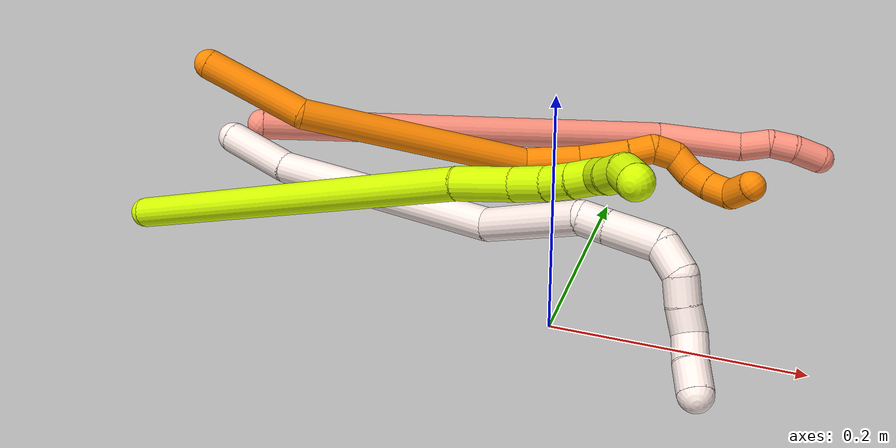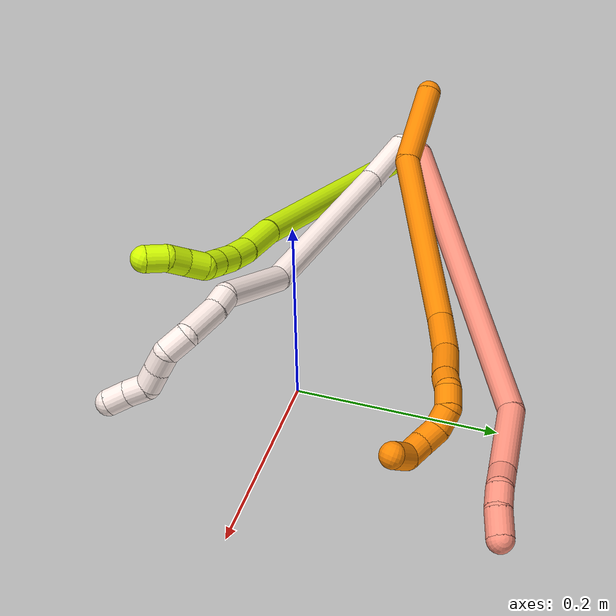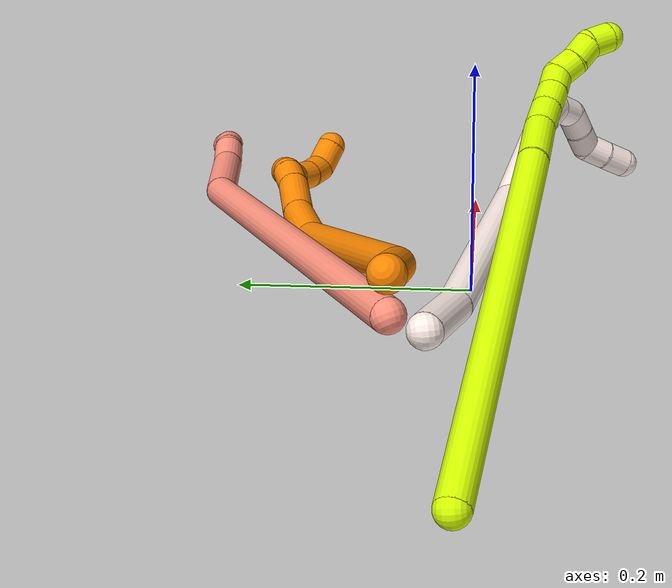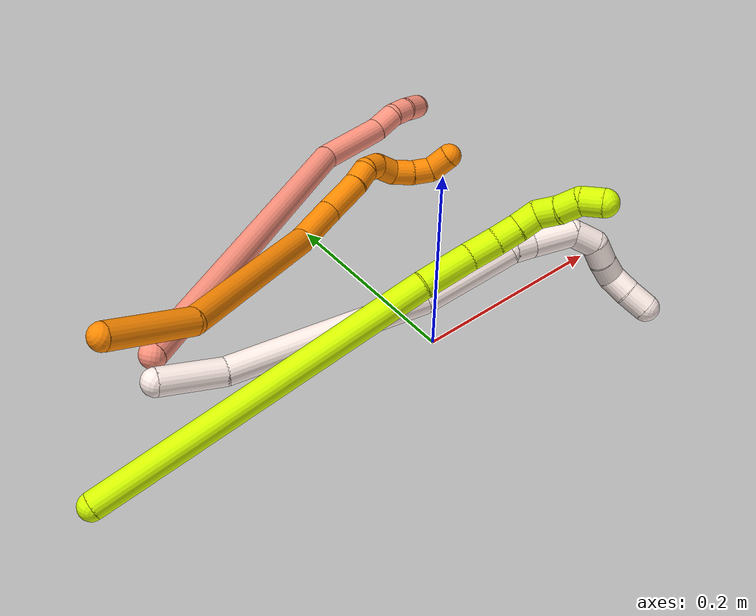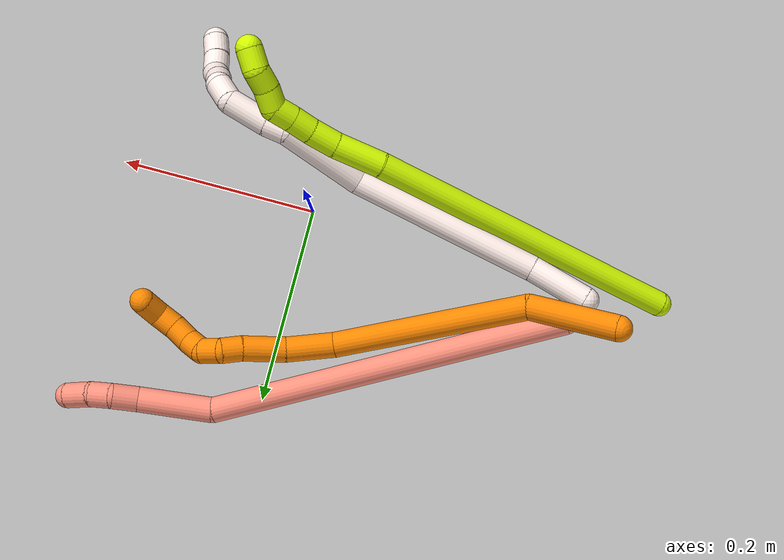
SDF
<sdf version="1.7">
 <world name="default">
  <model name="11">
   <static>0</static>
   <link name="11">
    <collision name="collision-cylinder-e_1_1_4">
     <pose>0.019454 -0.016528 0.014815 0.840002 0.71967 0.332906</pose>
     <geometry><cylinder><radius>0.0125</radius><length>0.05903</length></cylinder></geometry>
     <surface>
      <friction><ode><mu>1.16</mu><mu2>1.16</mu2><slip1>0</slip1><slip2>0</slip2></ode></friction>
      <contact><ode><kp>1e+06</kp><kd>1</kd><max_vel>0</max_vel><min_depth>0.001</min_depth></ode></contact>
     </surface>
    </collision>
    <visual name="visual-cylinder-e_1_1_4">
     <pose>0.019454 -0.016528 0.014815 0.840002 0.71967 0.332906</pose>
     <geometry><cylinder><radius>0.0125</radius><length>0.05903</length></cylinder></geometry>
     <material><ambient>1 0.933333 0.909804 1</ambient></material>
    </visual>
    <collision name="collision-cylinder-e_2_4_5">
     <pose>0.113445 -0.071843 0.070905 0.75432 0.920992 0.388063</pose>
     <geometry><cylinder><radius>0.0125</radius><length>0.187229</length></cylinder></geometry>
     <surface>
      <friction><ode><mu>1.16</mu><mu2>1.16</mu2><slip1>0</slip1><slip2>0</slip2></ode></friction>
      <contact><ode><kp>1e+06</kp><kd>1</kd><max_vel>0</max_vel><min_depth>0.001</min_depth></ode></contact>
     </surface>
    </collision>
    <visual name="visual-cylinder-e_2_4_5">
     <pose>0.113445 -0.071843 0.070905 0.75432 0.920992 0.388063</pose>
     <geometry><cylinder><radius>0.0125</radius><length>0.187229</length></cylinder></geometry>
     <material><ambient>1 0.933333 0.909804 1</ambient></material>
    </visual>
    <collision name="collision-cylinder-e_3_5_6">
     <pose>0.225199 -0.111882 0.133651 0.058273 1.04681 0.033635</pose>
     <geometry><cylinder><radius>0.0125</radius><length>0.08597</length></cylinder></geometry>
     <surface>
      <friction><ode><mu>1.16</mu><mu2>1.16</mu2><slip1>0</slip1><slip2>0</slip2></ode></friction>
      <contact><ode><kp>1e+06</kp><kd>1</kd><max_vel>0</max_vel><min_depth>0.001</min_depth></ode></contact>
     </surface>
    </collision>
    <visual name="visual-cylinder-e_3_5_6">
     <pose>0.225199 -0.111882 0.133651 0.058273 1.04681 0.033635</pose>
     <geometry><cylinder><radius>0.0125</radius><length>0.08597</length></cylinder></geometry>
     <material><ambient>1 0.933333 0.909804 1</ambient></material>
    </visual>
    <collision name="collision-cylinder-e_4_6_7">
     <pose>0.270124 -0.118477 0.15915 0.924699 0.855894 0.447061</pose>
     <geometry><cylinder><radius>0.0125</radius><length>0.020413</length></cylinder></geometry>
     <surface>
      <friction><ode><mu>1.16</mu><mu2>1.16</mu2><slip1>0</slip1><slip2>0</slip2></ode></friction>
      <contact><ode><kp>1e+06</kp><kd>1</kd><max_vel>0</max_vel><min_depth>0.001</min_depth></ode></contact>
     </surface>
    </collision>
    <visual name="visual-cylinder-e_4_6_7">
     <pose>0.270124 -0.118477 0.15915 0.924699 0.855894 0.447061</pose>
     <geometry><cylinder><radius>0.0125</radius><length>0.020413</length></cylinder></geometry>
     <material><ambient>1 0.933333 0.909804 1</ambient></material>
    </visual>
    <collision name="collision-cylinder-e_5_7_8">
     <pose>0.29342 -0.13234 0.173745 0.678676 0.854327 0.318635</pose>
     <geometry><cylinder><radius>0.0125</radius><length>0.04134</length></cylinder></geometry>
     <surface>
      <friction><ode><mu>1.16</mu><mu2>1.16</mu2><slip1>0</slip1><slip2>0</slip2></ode></friction>
      <contact><ode><kp>1e+06</kp><kd>1</kd><max_vel>0</max_vel><min_depth>0.001</min_depth></ode></contact>
     </surface>
    </collision>
    <visual name="visual-cylinder-e_5_7_8">
     <pose>0.29342 -0.13234 0.173745 0.678676 0.854327 0.318635</pose>
     <geometry><cylinder><radius>0.0125</radius><length>0.04134</length></cylinder></geometry>
     <material><ambient>1 0.933333 0.909804 1</ambient></material>
    </visual>
    <collision name="collision-cylinder-e_6_8_9">
     <pose>0.31139 -0.148768 0.193068 0.734438 0.199273 0.076871</pose>
     <geometry><cylinder><radius>0.0125</radius><length>0.024071</length></cylinder></geometry>
     <surface>
      <friction><ode><mu>1.16</mu><mu2>1.16</mu2><slip1>0</slip1><slip2>0</slip2></ode></friction>
      <contact><ode><kp>1e+06</kp><kd>1</kd><max_vel>0</max_vel><min_depth>0.001</min_depth></ode></contact>
     </surface>
    </collision>
    <visual name="visual-cylinder-e_6_8_9">
     <pose>0.31139 -0.148768 0.193068 0.734438 0.199273 0.076871</pose>
     <geometry><cylinder><radius>0.0125</radius><length>0.024071</length></cylinder></geometry>
     <material><ambient>1 0.933333 0.909804 1</ambient></material>
    </visual>
    <collision name="collision-cylinder-e_7_9_10">
     <pose>0.310714 -0.165236 0.206068 1.11056 -0.309847 -0.193178</pose>
     <geometry><cylinder><radius>0.0125</radius><length>0.020067</length></cylinder></geometry>
     <surface>
      <friction><ode><mu>1.16</mu><mu2>1.16</mu2><slip1>0</slip1><slip2>0</slip2></ode></friction>
      <contact><ode><kp>1e+06</kp><kd>1</kd><max_vel>0</max_vel><min_depth>0.001</min_depth></ode></contact>
     </surface>
    </collision>
    <visual name="visual-cylinder-e_7_9_10">
     <pose>0.310714 -0.165236 0.206068 1.11056 -0.309847 -0.193178</pose>
     <geometry><cylinder><radius>0.0125</radius><length>0.020067</length></cylinder></geometry>
     <material><ambient>1 0.933333 0.909804 1</ambient></material>
    </visual>
    <collision name="collision-cylinder-e_8_10_11">
     <pose>0.305708 -0.182647 0.214554 1.12384 -0.19579 -0.123513</pose>
     <geometry><cylinder><radius>0.0125</radius><length>0.02001</length></cylinder></geometry>
     <surface>
      <friction><ode><mu>1.16</mu><mu2>1.16</mu2><slip1>0</slip1><slip2>0</slip2></ode></friction>
      <contact><ode><kp>1e+06</kp><kd>1</kd><max_vel>0</max_vel><min_depth>0.001</min_depth></ode></contact>
     </surface>
    </collision>
    <visual name="visual-cylinder-e_8_10_11">
     <pose>0.305708 -0.182647 0.214554 1.12384 -0.19579 -0.123513</pose>
     <geometry><cylinder><radius>0.0125</radius><length>0.02001</length></cylinder></geometry>
     <material><ambient>1 0.933333 0.909804 1</ambient></material>
    </visual>
    <collision name="collision-cylinder-e_9_11_12">
     <pose>0.301503 -0.195918 0.22776 0.458233 -0.222277 -0.05204</pose>
     <geometry><cylinder><radius>0.0125</radius><length>0.020495</length></cylinder></geometry>
     <surface>
      <friction><ode><mu>1.16</mu><mu2>1.16</mu2><slip1>0</slip1><slip2>0</slip2></ode></friction>
      <contact><ode><kp>1e+06</kp><kd>1</kd><max_vel>0</max_vel><min_depth>0.001</min_depth></ode></contact>
     </surface>
    </collision>
    <visual name="visual-cylinder-e_9_11_12">
     <pose>0.301503 -0.195918 0.22776 0.458233 -0.222277 -0.05204</pose>
     <geometry><cylinder><radius>0.0125</radius><length>0.020495</length></cylinder></geometry>
     <material><ambient>1 0.933333 0.909804 1</ambient></material>
    </visual>
    <collision name="collision-cylinder-e_10_12_2">
     <pose>0.297905 -0.20556 0.245953 0.514747 -0.125584 -0.033096</pose>
     <geometry><cylinder><radius>0.0125</radius><length>0.021375</length></cylinder></geometry>
     <surface>
      <friction><ode><mu>1.16</mu><mu2>1.16</mu2><slip1>0</slip1><slip2>0</slip2></ode></friction>
      <contact><ode><kp>1e+06</kp><kd>1</kd><max_vel>0</max_vel><min_depth>0.001</min_depth></ode></contact>
     </surface>
    </collision>
    <visual name="visual-cylinder-e_10_12_2">
     <pose>0.297905 -0.20556 0.245953 0.514747 -0.125584 -0.033096</pose>
     <geometry><cylinder><radius>0.0125</radius><length>0.021375</length></cylinder></geometry>
     <material><ambient>1 0.933333 0.909804 1</ambient></material>
    </visual>
    <collision name="collision-sphere-2">
     <pose>0.296566 -0.21078 0.255182 0 -0 0</pose>
     <geometry><sphere><radius>0.0125</radius></sphere></geometry>
     <surface>
      <friction><ode><mu>1.16</mu><mu2>1.16</mu2><slip1>0</slip1><slip2>0</slip2></ode></friction>
      <contact><ode><kp>1e+06</kp><kd>1</kd><max_vel>0</max_vel><min_depth>0.001</min_depth></ode></contact>
     </surface>
    </collision>
    <visual name="visual-sphere-2">
     <pose>0.296566 -0.21078 0.255182 0 -0 0</pose>
     <geometry><sphere><radius>0.0125</radius></sphere></geometry>
     <material><ambient>1 0.933333 0.909804 1</ambient></material>
    </visual>
    <collision name="collision-sphere-12">
     <pose>0.299244 -0.20034 0.236724 0 -0 0</pose>
     <geometry><sphere><radius>0.0125</radius></sphere></geometry>
     <surface>
      <friction><ode><mu>1.16</mu><mu2>1.16</mu2><slip1>0</slip1><slip2>0</slip2></ode></friction>
      <contact><ode><kp>1e+06</kp><kd>1</kd><max_vel>0</max_vel><min_depth>0.001</min_depth></ode></contact>
     </surface>
    </collision>
    <visual name="visual-sphere-12">
     <pose>0.299244 -0.20034 0.236724 0 -0 0</pose>
     <geometry><sphere><radius>0.0125</radius></sphere></geometry>
     <material><ambient>1 0.933333 0.909804 1</ambient></material>
    </visual>
    <collision name="collision-sphere-11">
     <pose>0.303762 -0.191497 0.218796 0 -0 0</pose>
     <geometry><sphere><radius>0.0125</radius></sphere></geometry>
     <surface>
      <friction><ode><mu>1.16</mu><mu2>1.16</mu2><slip1>0</slip1><slip2>0</slip2></ode></friction>
      <contact><ode><kp>1e+06</kp><kd>1</kd><max_vel>0</max_vel><min_depth>0.001</min_depth></ode></contact>
     </surface>
    </collision>
    <visual name="visual-sphere-11">
     <pose>0.303762 -0.191497 0.218796 0 -0 0</pose>
     <geometry><sphere><radius>0.0125</radius></sphere></geometry>
     <material><ambient>1 0.933333 0.909804 1</ambient></material>
    </visual>
    <collision name="collision-sphere-10">
     <pose>0.307654 -0.173797 0.210312 0 -0 0</pose>
     <geometry><sphere><radius>0.0125</radius></sphere></geometry>
     <surface>
      <friction><ode><mu>1.16</mu><mu2>1.16</mu2><slip1>0</slip1><slip2>0</slip2></ode></friction>
      <contact><ode><kp>1e+06</kp><kd>1</kd><max_vel>0</max_vel><min_depth>0.001</min_depth></ode></contact>
     </surface>
    </collision>
    <visual name="visual-sphere-10">
     <pose>0.307654 -0.173797 0.210312 0 -0 0</pose>
     <geometry><sphere><radius>0.0125</radius></sphere></geometry>
     <material><ambient>1 0.933333 0.909804 1</ambient></material>
    </visual>
    <collision name="collision-sphere-9">
     <pose>0.313773 -0.156675 0.201824 0 -0 0</pose>
     <geometry><sphere><radius>0.0125</radius></sphere></geometry>
     <surface>
      <friction><ode><mu>1.16</mu><mu2>1.16</mu2><slip1>0</slip1><slip2>0</slip2></ode></friction>
      <contact><ode><kp>1e+06</kp><kd>1</kd><max_vel>0</max_vel><min_depth>0.001</min_depth></ode></contact>
     </surface>
    </collision>
    <visual name="visual-sphere-9">
     <pose>0.313773 -0.156675 0.201824 0 -0 0</pose>
     <geometry><sphere><radius>0.0125</radius></sphere></geometry>
     <material><ambient>1 0.933333 0.909804 1</ambient></material>
    </visual>
    <collision name="collision-sphere-4">
     <pose>0.038909 -0.033056 0.02963 0 -0 0</pose>
     <geometry><sphere><radius>0.0125</radius></sphere></geometry>
     <surface>
      <friction><ode><mu>1.16</mu><mu2>1.16</mu2><slip1>0</slip1><slip2>0</slip2></ode></friction>
      <contact><ode><kp>1e+06</kp><kd>1</kd><max_vel>0</max_vel><min_depth>0.001</min_depth></ode></contact>
     </surface>
    </collision>
    <visual name="visual-sphere-4">
     <pose>0.038909 -0.033056 0.02963 0 -0 0</pose>
     <geometry><sphere><radius>0.0125</radius></sphere></geometry>
     <material><ambient>1 0.933333 0.909804 1</ambient></material>
    </visual>
    <collision name="collision-sphere-1">
     <geometry><sphere><radius>0.0125</radius></sphere></geometry>
     <surface>
      <friction><ode><mu>1.16</mu><mu2>1.16</mu2><slip1>0</slip1><slip2>0</slip2></ode></friction>
      <contact><ode><kp>1e+06</kp><kd>1</kd><max_vel>0</max_vel><min_depth>0.001</min_depth></ode></contact>
     </surface>
    </collision>
    <visual name="visual-sphere-1">
     <geometry><sphere><radius>0.0125</radius></sphere></geometry>
     <material><ambient>1 0.933333 0.909804 1</ambient></material>
    </visual>
    <collision name="collision-sphere-8">
     <pose>0.309008 -0.140862 0.184312 0 -0 0</pose>
     <geometry><sphere><radius>0.0125</radius></sphere></geometry>
     <surface>
      <friction><ode><mu>1.16</mu><mu2>1.16</mu2><slip1>0</slip1><slip2>0</slip2></ode></friction>
      <contact><ode><kp>1e+06</kp><kd>1</kd><max_vel>0</max_vel><min_depth>0.001</min_depth></ode></contact>
     </surface>
    </collision>
    <visual name="visual-sphere-8">
     <pose>0.309008 -0.140862 0.184312 0 -0 0</pose>
     <geometry><sphere><radius>0.0125</radius></sphere></geometry>
     <material><ambient>1 0.933333 0.909804 1</ambient></material>
    </visual>
    <collision name="collision-sphere-5">
     <pose>0.187981 -0.110629 0.112181 0 -0 0</pose>
     <geometry><sphere><radius>0.0125</radius></sphere></geometry>
     <surface>
      <friction><ode><mu>1.16</mu><mu2>1.16</mu2><slip1>0</slip1><slip2>0</slip2></ode></friction>
      <contact><ode><kp>1e+06</kp><kd>1</kd><max_vel>0</max_vel><min_depth>0.001</min_depth></ode></contact>
     </surface>
    </collision>
    <visual name="visual-sphere-5">
     <pose>0.187981 -0.110629 0.112181 0 -0 0</pose>
     <geometry><sphere><radius>0.0125</radius></sphere></geometry>
     <material><ambient>1 0.933333 0.909804 1</ambient></material>
    </visual>
    <collision name="collision-sphere-6">
     <pose>0.262417 -0.113134 0.155122 0 -0 0</pose>
     <geometry><sphere><radius>0.0125</radius></sphere></geometry>
     <surface>
      <friction><ode><mu>1.16</mu><mu2>1.16</mu2><slip1>0</slip1><slip2>0</slip2></ode></friction>
      <contact><ode><kp>1e+06</kp><kd>1</kd><max_vel>0</max_vel><min_depth>0.001</min_depth></ode></contact>
     </surface>
    </collision>
    <visual name="visual-sphere-6">
     <pose>0.262417 -0.113134 0.155122 0 -0 0</pose>
     <geometry><sphere><radius>0.0125</radius></sphere></geometry>
     <material><ambient>1 0.933333 0.909804 1</ambient></material>
    </visual>
    <collision name="collision-sphere-7">
     <pose>0.277832 -0.123819 0.163179 0 -0 0</pose>
     <geometry><sphere><radius>0.0125</radius></sphere></geometry>
     <surface>
      <friction><ode><mu>1.16</mu><mu2>1.16</mu2><slip1>0</slip1><slip2>0</slip2></ode></friction>
      <contact><ode><kp>1e+06</kp><kd>1</kd><max_vel>0</max_vel><min_depth>0.001</min_depth></ode></contact>
     </surface>
    </collision>
    <visual name="visual-sphere-7">
     <pose>0.277832 -0.123819 0.163179 0 -0 0</pose>
     <geometry><sphere><radius>0.0125</radius></sphere></geometry>
     <material><ambient>1 0.933333 0.909804 1</ambient></material>
    </visual>
    <inertial>
     <pose>0.183575 -0.101791 0.118145 0 -0 0</pose>
     <mass>0.5</mass>
     <inertia>
      <ixx>0.000523</ixx>
      <ixy>0</ixy>
      <ixz>0</ixz>
      <iyy>0.000691</iyy>
      <iyz>0</iyz>
      <izz>-0.000237</izz>
     </inertia>
    </inertial>
   </link>
   <pose>-0.279819 0.024092 0.11165 1.53713 -0.478666 0.266786</pose>
  </model>
  <model name="15">
   <static>0</static>
   <link name="15">
    <collision name="collision-cylinder-e_1_1_4">
     <pose>0.152605 -0.053194 -0.013685 1.82259 1.22531 1.47288</pose>
     <geometry><cylinder><radius>0.0125</radius><length>0.324378</length></cylinder></geometry>
     <surface>
      <friction><ode><mu>1.16</mu><mu2>1.16</mu2><slip1>0</slip1><slip2>0</slip2></ode></friction>
      <contact><ode><kp>1e+06</kp><kd>1</kd><max_vel>0</max_vel><min_depth>0.001</min_depth></ode></contact>
     </surface>
    </collision>
    <visual name="visual-cylinder-e_1_1_4">
     <pose>0.152605 -0.053194 -0.013685 1.82259 1.22531 1.47288</pose>
     <geometry><cylinder><radius>0.0125</radius><length>0.324378</length></cylinder></geometry>
     <material><ambient>0.835294 1 0 1</ambient></material>
    </visual>
    <collision name="collision-cylinder-e_2_4_5">
     <pose>0.328117 -0.111684 -0.028082 1.70462 1.34163 1.47397</pose>
     <geometry><cylinder><radius>0.0125</radius><length>0.047043</length></cylinder></geometry>
     <surface>
      <friction><ode><mu>1.16</mu><mu2>1.16</mu2><slip1>0</slip1><slip2>0</slip2></ode></friction>
      <contact><ode><kp>1e+06</kp><kd>1</kd><max_vel>0</max_vel><min_depth>0.001</min_depth></ode></contact>
     </surface>
    </collision>
    <visual name="visual-cylinder-e_2_4_5">
     <pose>0.328117 -0.111684 -0.028082 1.70462 1.34163 1.47397</pose>
     <geometry><cylinder><radius>0.0125</radius><length>0.047043</length></cylinder></geometry>
     <material><ambient>0.835294 1 0 1</ambient></material>
    </visual>
    <collision name="collision-cylinder-e_3_5_6">
     <pose>0.363774 -0.1208 -0.030602 2.0125 1.25071 1.70153</pose>
     <geometry><cylinder><radius>0.0125</radius><length>0.026866</length></cylinder></geometry>
     <surface>
      <friction><ode><mu>1.16</mu><mu2>1.16</mu2><slip1>0</slip1><slip2>0</slip2></ode></friction>
      <contact><ode><kp>1e+06</kp><kd>1</kd><max_vel>0</max_vel><min_depth>0.001</min_depth></ode></contact>
     </surface>
    </collision>
    <visual name="visual-cylinder-e_3_5_6">
     <pose>0.363774 -0.1208 -0.030602 2.0125 1.25071 1.70153</pose>
     <geometry><cylinder><radius>0.0125</radius><length>0.026866</length></cylinder></geometry>
     <material><ambient>0.835294 1 0 1</ambient></material>
    </visual>
    <collision name="collision-cylinder-e_4_6_7">
     <pose>0.3863 -0.128674 -0.034537 2.05437 1.13285 1.62172</pose>
     <geometry><cylinder><radius>0.0125</radius><length>0.021588</length></cylinder></geometry>
     <surface>
      <friction><ode><mu>1.16</mu><mu2>1.16</mu2><slip1>0</slip1><slip2>0</slip2></ode></friction>
      <contact><ode><kp>1e+06</kp><kd>1</kd><max_vel>0</max_vel><min_depth>0.001</min_depth></ode></contact>
     </surface>
    </collision>
    <visual name="visual-cylinder-e_4_6_7">
     <pose>0.3863 -0.128674 -0.034537 2.05437 1.13285 1.62172</pose>
     <geometry><cylinder><radius>0.0125</radius><length>0.021588</length></cylinder></geometry>
     <material><ambient>0.835294 1 0 1</ambient></material>
    </visual>
    <collision name="collision-cylinder-e_5_7_8">
     <pose>0.405082 -0.136835 -0.038117 1.91053 1.12016 1.45084</pose>
     <geometry><cylinder><radius>0.0125</radius><length>0.02001</length></cylinder></geometry>
     <surface>
      <friction><ode><mu>1.16</mu><mu2>1.16</mu2><slip1>0</slip1><slip2>0</slip2></ode></friction>
      <contact><ode><kp>1e+06</kp><kd>1</kd><max_vel>0</max_vel><min_depth>0.001</min_depth></ode></contact>
     </surface>
    </collision>
    <visual name="visual-cylinder-e_5_7_8">
     <pose>0.405082 -0.136835 -0.038117 1.91053 1.12016 1.45084</pose>
     <geometry><cylinder><radius>0.0125</radius><length>0.02001</length></cylinder></geometry>
     <material><ambient>0.835294 1 0 1</ambient></material>
    </visual>
    <collision name="collision-cylinder-e_6_8_9">
     <pose>0.419961 -0.144479 -0.046857 2.68996 0.627342 1.90914</pose>
     <geometry><cylinder><radius>0.0125</radius><length>0.02001</length></cylinder></geometry>
     <surface>
      <friction><ode><mu>1.16</mu><mu2>1.16</mu2><slip1>0</slip1><slip2>0</slip2></ode></friction>
      <contact><ode><kp>1e+06</kp><kd>1</kd><max_vel>0</max_vel><min_depth>0.001</min_depth></ode></contact>
     </surface>
    </collision>
    <visual name="visual-cylinder-e_6_8_9">
     <pose>0.419961 -0.144479 -0.046857 2.68996 0.627342 1.90914</pose>
     <geometry><cylinder><radius>0.0125</radius><length>0.02001</length></cylinder></geometry>
     <material><ambient>0.835294 1 0 1</ambient></material>
    </visual>
    <collision name="collision-cylinder-e_7_9_10">
     <pose>0.432499 -0.152742 -0.05993 2.45636 0.728452 1.63731</pose>
     <geometry><cylinder><radius>0.0125</radius><length>0.020025</length></cylinder></geometry>
     <surface>
      <friction><ode><mu>1.16</mu><mu2>1.16</mu2><slip1>0</slip1><slip2>0</slip2></ode></friction>
      <contact><ode><kp>1e+06</kp><kd>1</kd><max_vel>0</max_vel><min_depth>0.001</min_depth></ode></contact>
     </surface>
    </collision>
    <visual name="visual-cylinder-e_7_9_10">
     <pose>0.432499 -0.152742 -0.05993 2.45636 0.728452 1.63731</pose>
     <geometry><cylinder><radius>0.0125</radius><length>0.020025</length></cylinder></geometry>
     <material><ambient>0.835294 1 0 1</ambient></material>
    </visual>
    <collision name="collision-cylinder-e_8_10_2">
     <pose>0.44551 -0.157834 -0.073487 3.09483 0.684168 3.01044</pose>
     <geometry><cylinder><radius>0.0125</radius><length>0.02008</length></cylinder></geometry>
     <surface>
      <friction><ode><mu>1.16</mu><mu2>1.16</mu2><slip1>0</slip1><slip2>0</slip2></ode></friction>
      <contact><ode><kp>1e+06</kp><kd>1</kd><max_vel>0</max_vel><min_depth>0.001</min_depth></ode></contact>
     </surface>
    </collision>
    <visual name="visual-cylinder-e_8_10_2">
     <pose>0.44551 -0.157834 -0.073487 3.09483 0.684168 3.01044</pose>
     <geometry><cylinder><radius>0.0125</radius><length>0.02008</length></cylinder></geometry>
     <material><ambient>0.835294 1 0 1</ambient></material>
    </visual>
    <collision name="collision-sphere-2">
     <pose>0.451856 -0.158198 -0.081259 0 -0 0</pose>
     <geometry><sphere><radius>0.0125</radius></sphere></geometry>
     <surface>
      <friction><ode><mu>1.16</mu><mu2>1.16</mu2><slip1>0</slip1><slip2>0</slip2></ode></friction>
      <contact><ode><kp>1e+06</kp><kd>1</kd><max_vel>0</max_vel><min_depth>0.001</min_depth></ode></contact>
     </surface>
    </collision>
    <visual name="visual-sphere-2">
     <pose>0.451856 -0.158198 -0.081259 0 -0 0</pose>
     <geometry><sphere><radius>0.0125</radius></sphere></geometry>
     <material><ambient>0.835294 1 0 1</ambient></material>
    </visual>
    <collision name="collision-sphere-10">
     <pose>0.439165 -0.15747 -0.065715 0 -0 0</pose>
     <geometry><sphere><radius>0.0125</radius></sphere></geometry>
     <surface>
      <friction><ode><mu>1.16</mu><mu2>1.16</mu2><slip1>0</slip1><slip2>0</slip2></ode></friction>
      <contact><ode><kp>1e+06</kp><kd>1</kd><max_vel>0</max_vel><min_depth>0.001</min_depth></ode></contact>
     </surface>
    </collision>
    <visual name="visual-sphere-10">
     <pose>0.439165 -0.15747 -0.065715 0 -0 0</pose>
     <geometry><sphere><radius>0.0125</radius></sphere></geometry>
     <material><ambient>0.835294 1 0 1</ambient></material>
    </visual>
    <collision name="collision-sphere-9">
     <pose>0.425834 -0.148014 -0.054145 0 -0 0</pose>
     <geometry><sphere><radius>0.0125</radius></sphere></geometry>
     <surface>
      <friction><ode><mu>1.16</mu><mu2>1.16</mu2><slip1>0</slip1><slip2>0</slip2></ode></friction>
      <contact><ode><kp>1e+06</kp><kd>1</kd><max_vel>0</max_vel><min_depth>0.001</min_depth></ode></contact>
     </surface>
    </collision>
    <visual name="visual-sphere-9">
     <pose>0.425834 -0.148014 -0.054145 0 -0 0</pose>
     <geometry><sphere><radius>0.0125</radius></sphere></geometry>
     <material><ambient>0.835294 1 0 1</ambient></material>
    </visual>
    <collision name="collision-sphere-4">
     <pose>0.30521 -0.106388 -0.027369 0 -0 0</pose>
     <geometry><sphere><radius>0.0125</radius></sphere></geometry>
     <surface>
      <friction><ode><mu>1.16</mu><mu2>1.16</mu2><slip1>0</slip1><slip2>0</slip2></ode></friction>
      <contact><ode><kp>1e+06</kp><kd>1</kd><max_vel>0</max_vel><min_depth>0.001</min_depth></ode></contact>
     </surface>
    </collision>
    <visual name="visual-sphere-4">
     <pose>0.30521 -0.106388 -0.027369 0 -0 0</pose>
     <geometry><sphere><radius>0.0125</radius></sphere></geometry>
     <material><ambient>0.835294 1 0 1</ambient></material>
    </visual>
    <collision name="collision-sphere-1">
     <geometry><sphere><radius>0.0125</radius></sphere></geometry>
     <surface>
      <friction><ode><mu>1.16</mu><mu2>1.16</mu2><slip1>0</slip1><slip2>0</slip2></ode></friction>
      <contact><ode><kp>1e+06</kp><kd>1</kd><max_vel>0</max_vel><min_depth>0.001</min_depth></ode></contact>
     </surface>
    </collision>
    <visual name="visual-sphere-1">
     <geometry><sphere><radius>0.0125</radius></sphere></geometry>
     <material><ambient>0.835294 1 0 1</ambient></material>
    </visual>
    <collision name="collision-sphere-8">
     <pose>0.414088 -0.140943 -0.039569 0 -0 0</pose>
     <geometry><sphere><radius>0.0125</radius></sphere></geometry>
     <surface>
      <friction><ode><mu>1.16</mu><mu2>1.16</mu2><slip1>0</slip1><slip2>0</slip2></ode></friction>
      <contact><ode><kp>1e+06</kp><kd>1</kd><max_vel>0</max_vel><min_depth>0.001</min_depth></ode></contact>
     </surface>
    </collision>
    <visual name="visual-sphere-8">
     <pose>0.414088 -0.140943 -0.039569 0 -0 0</pose>
     <geometry><sphere><radius>0.0125</radius></sphere></geometry>
     <material><ambient>0.835294 1 0 1</ambient></material>
    </visual>
    <collision name="collision-sphere-5">
     <pose>0.351024 -0.116979 -0.028795 0 -0 0</pose>
     <geometry><sphere><radius>0.0125</radius></sphere></geometry>
     <surface>
      <friction><ode><mu>1.16</mu><mu2>1.16</mu2><slip1>0</slip1><slip2>0</slip2></ode></friction>
      <contact><ode><kp>1e+06</kp><kd>1</kd><max_vel>0</max_vel><min_depth>0.001</min_depth></ode></contact>
     </surface>
    </collision>
    <visual name="visual-sphere-5">
     <pose>0.351024 -0.116979 -0.028795 0 -0 0</pose>
     <geometry><sphere><radius>0.0125</radius></sphere></geometry>
     <material><ambient>0.835294 1 0 1</ambient></material>
    </visual>
    <collision name="collision-sphere-6">
     <pose>0.376525 -0.124621 -0.032409 0 -0 0</pose>
     <geometry><sphere><radius>0.0125</radius></sphere></geometry>
     <surface>
      <friction><ode><mu>1.16</mu><mu2>1.16</mu2><slip1>0</slip1><slip2>0</slip2></ode></friction>
      <contact><ode><kp>1e+06</kp><kd>1</kd><max_vel>0</max_vel><min_depth>0.001</min_depth></ode></contact>
     </surface>
    </collision>
    <visual name="visual-sphere-6">
     <pose>0.376525 -0.124621 -0.032409 0 -0 0</pose>
     <geometry><sphere><radius>0.0125</radius></sphere></geometry>
     <material><ambient>0.835294 1 0 1</ambient></material>
    </visual>
    <collision name="collision-sphere-7">
     <pose>0.396075 -0.132726 -0.036665 0 -0 0</pose>
     <geometry><sphere><radius>0.0125</radius></sphere></geometry>
     <surface>
      <friction><ode><mu>1.16</mu><mu2>1.16</mu2><slip1>0</slip1><slip2>0</slip2></ode></friction>
      <contact><ode><kp>1e+06</kp><kd>1</kd><max_vel>0</max_vel><min_depth>0.001</min_depth></ode></contact>
     </surface>
    </collision>
    <visual name="visual-sphere-7">
     <pose>0.396075 -0.132726 -0.036665 0 -0 0</pose>
     <geometry><sphere><radius>0.0125</radius></sphere></geometry>
     <material><ambient>0.835294 1 0 1</ambient></material>
    </visual>
    <inertial>
     <pose>0.234332 -0.080778 -0.023408 0 -0 0</pose>
     <mass>0.5</mass>
     <inertia>
      <ixx>0.001098</ixx>
      <ixy>0</ixy>
      <ixz>0</ixz>
      <iyy>0.003497</iyy>
      <iyz>0</iyz>
      <izz>-0.00177</izz>
     </inertia>
    </inertial>
   </link>
   <pose>-0.361722 0.003466 0.036533 -1.7376 0.009904 -0.133445</pose>
  </model>
  <model name="16">
   <static>0</static>
   <link name="16">
    <collision name="collision-cylinder-e_1_1_4">
     <pose>0.123625 0.082476 0.094518 -0.717466 0.7781 -0.305036</pose>
     <geometry><cylinder><radius>0.0125</radius><length>0.352244</length></cylinder></geometry>
     <surface>
      <friction><ode><mu>1.16</mu><mu2>1.16</mu2><slip1>0</slip1><slip2>0</slip2></ode></friction>
      <contact><ode><kp>1e+06</kp><kd>1</kd><max_vel>0</max_vel><min_depth>0.001</min_depth></ode></contact>
     </surface>
    </collision>
    <visual name="visual-cylinder-e_1_1_4">
     <pose>0.123625 0.082476 0.094518 -0.717466 0.7781 -0.305036</pose>
     <geometry><cylinder><radius>0.0125</radius><length>0.352244</length></cylinder></geometry>
     <material><ambient>1 0.576471 0.494118 1</ambient></material>
    </visual>
    <collision name="collision-cylinder-e_2_4_5">
     <pose>0.278528 0.16871 0.208534 -0.190427 1.00514 -0.104888</pose>
     <geometry><cylinder><radius>0.0125</radius><length>0.074099</length></cylinder></geometry>
     <surface>
      <friction><ode><mu>1.16</mu><mu2>1.16</mu2><slip1>0</slip1><slip2>0</slip2></ode></friction>
      <contact><ode><kp>1e+06</kp><kd>1</kd><max_vel>0</max_vel><min_depth>0.001</min_depth></ode></contact>
     </surface>
    </collision>
    <visual name="visual-cylinder-e_2_4_5">
     <pose>0.278528 0.16871 0.208534 -0.190427 1.00514 -0.104888</pose>
     <geometry><cylinder><radius>0.0125</radius><length>0.074099</length></cylinder></geometry>
     <material><ambient>1 0.576471 0.494118 1</ambient></material>
    </visual>
    <collision name="collision-cylinder-e_3_5_6">
     <pose>0.318755 0.172324 0.237378 0.015465 0.763633 0.00621</pose>
     <geometry><cylinder><radius>0.0125</radius><length>0.025878</length></cylinder></geometry>
     <surface>
      <friction><ode><mu>1.16</mu><mu2>1.16</mu2><slip1>0</slip1><slip2>0</slip2></ode></friction>
      <contact><ode><kp>1e+06</kp><kd>1</kd><max_vel>0</max_vel><min_depth>0.001</min_depth></ode></contact>
     </surface>
    </collision>
    <visual name="visual-cylinder-e_3_5_6">
     <pose>0.318755 0.172324 0.237378 0.015465 0.763633 0.00621</pose>
     <geometry><cylinder><radius>0.0125</radius><length>0.025878</length></cylinder></geometry>
     <material><ambient>1 0.576471 0.494118 1</ambient></material>
    </visual>
    <collision name="collision-cylinder-e_4_6_7">
     <pose>0.336982 0.174445 0.25127 -0.462179 1.0699 -0.277076</pose>
     <geometry><cylinder><radius>0.0125</radius><length>0.021157</length></cylinder></geometry>
     <surface>
      <friction><ode><mu>1.16</mu><mu2>1.16</mu2><slip1>0</slip1><slip2>0</slip2></ode></friction>
      <contact><ode><kp>1e+06</kp><kd>1</kd><max_vel>0</max_vel><min_depth>0.001</min_depth></ode></contact>
     </surface>
    </collision>
    <visual name="visual-cylinder-e_4_6_7">
     <pose>0.336982 0.174445 0.25127 -0.462179 1.0699 -0.277076</pose>
     <geometry><cylinder><radius>0.0125</radius><length>0.021157</length></cylinder></geometry>
     <material><ambient>1 0.576471 0.494118 1</ambient></material>
    </visual>
    <collision name="collision-cylinder-e_5_7_2">
     <pose>0.357854 0.182185 0.259393 -0.99223 1.05723 -0.612379</pose>
     <geometry><cylinder><radius>0.0125</radius><length>0.026622</length></cylinder></geometry>
     <surface>
      <friction><ode><mu>1.16</mu><mu2>1.16</mu2><slip1>0</slip1><slip2>0</slip2></ode></friction>
      <contact><ode><kp>1e+06</kp><kd>1</kd><max_vel>0</max_vel><min_depth>0.001</min_depth></ode></contact>
     </surface>
    </collision>
    <visual name="visual-cylinder-e_5_7_2">
     <pose>0.357854 0.182185 0.259393 -0.99223 1.05723 -0.612379</pose>
     <geometry><cylinder><radius>0.0125</radius><length>0.026622</length></cylinder></geometry>
     <material><ambient>1 0.576471 0.494118 1</ambient></material>
    </visual>
    <collision name="collision-sphere-2">
     <pose>0.369448 0.18766 0.262969 0 -0 0</pose>
     <geometry><sphere><radius>0.0125</radius></sphere></geometry>
     <surface>
      <friction><ode><mu>1.16</mu><mu2>1.16</mu2><slip1>0</slip1><slip2>0</slip2></ode></friction>
      <contact><ode><kp>1e+06</kp><kd>1</kd><max_vel>0</max_vel><min_depth>0.001</min_depth></ode></contact>
     </surface>
    </collision>
    <visual name="visual-sphere-2">
     <pose>0.369448 0.18766 0.262969 0 -0 0</pose>
     <geometry><sphere><radius>0.0125</radius></sphere></geometry>
     <material><ambient>1 0.576471 0.494118 1</ambient></material>
    </visual>
    <collision name="collision-sphere-7">
     <pose>0.346261 0.17671 0.255817 0 -0 0</pose>
     <geometry><sphere><radius>0.0125</radius></sphere></geometry>
     <surface>
      <friction><ode><mu>1.16</mu><mu2>1.16</mu2><slip1>0</slip1><slip2>0</slip2></ode></friction>
      <contact><ode><kp>1e+06</kp><kd>1</kd><max_vel>0</max_vel><min_depth>0.001</min_depth></ode></contact>
     </surface>
    </collision>
    <visual name="visual-sphere-7">
     <pose>0.346261 0.17671 0.255817 0 -0 0</pose>
     <geometry><sphere><radius>0.0125</radius></sphere></geometry>
     <material><ambient>1 0.576471 0.494118 1</ambient></material>
    </visual>
    <collision name="collision-sphere-6">
     <pose>0.327703 0.172179 0.246723 0 -0 0</pose>
     <geometry><sphere><radius>0.0125</radius></sphere></geometry>
     <surface>
      <friction><ode><mu>1.16</mu><mu2>1.16</mu2><slip1>0</slip1><slip2>0</slip2></ode></friction>
      <contact><ode><kp>1e+06</kp><kd>1</kd><max_vel>0</max_vel><min_depth>0.001</min_depth></ode></contact>
     </surface>
    </collision>
    <visual name="visual-sphere-6">
     <pose>0.327703 0.172179 0.246723 0 -0 0</pose>
     <geometry><sphere><radius>0.0125</radius></sphere></geometry>
     <material><ambient>1 0.576471 0.494118 1</ambient></material>
    </visual>
    <collision name="collision-sphere-5">
     <pose>0.309806 0.172469 0.228033 0 -0 0</pose>
     <geometry><sphere><radius>0.0125</radius></sphere></geometry>
     <surface>
      <friction><ode><mu>1.16</mu><mu2>1.16</mu2><slip1>0</slip1><slip2>0</slip2></ode></friction>
      <contact><ode><kp>1e+06</kp><kd>1</kd><max_vel>0</max_vel><min_depth>0.001</min_depth></ode></contact>
     </surface>
    </collision>
    <visual name="visual-sphere-5">
     <pose>0.309806 0.172469 0.228033 0 -0 0</pose>
     <geometry><sphere><radius>0.0125</radius></sphere></geometry>
     <material><ambient>1 0.576471 0.494118 1</ambient></material>
    </visual>
    <collision name="collision-sphere-1">
     <geometry><sphere><radius>0.0125</radius></sphere></geometry>
     <surface>
      <friction><ode><mu>1.16</mu><mu2>1.16</mu2><slip1>0</slip1><slip2>0</slip2></ode></friction>
      <contact><ode><kp>1e+06</kp><kd>1</kd><max_vel>0</max_vel><min_depth>0.001</min_depth></ode></contact>
     </surface>
    </collision>
    <visual name="visual-sphere-1">
     <geometry><sphere><radius>0.0125</radius></sphere></geometry>
     <material><ambient>1 0.576471 0.494118 1</ambient></material>
    </visual>
    <collision name="collision-sphere-4">
     <pose>0.24725 0.164951 0.189036 0 -0 0</pose>
     <geometry><sphere><radius>0.0125</radius></sphere></geometry>
     <surface>
      <friction><ode><mu>1.16</mu><mu2>1.16</mu2><slip1>0</slip1><slip2>0</slip2></ode></friction>
      <contact><ode><kp>1e+06</kp><kd>1</kd><max_vel>0</max_vel><min_depth>0.001</min_depth></ode></contact>
     </surface>
    </collision>
    <visual name="visual-sphere-4">
     <pose>0.24725 0.164951 0.189036 0 -0 0</pose>
     <geometry><sphere><radius>0.0125</radius></sphere></geometry>
     <material><ambient>1 0.576471 0.494118 1</ambient></material>
    </visual>
    <inertial>
     <pose>0.17818 0.109106 0.13422 0 -0 0</pose>
     <mass>0.5</mass>
     <inertia>
      <ixx>0.001751</ixx>
      <ixy>0</ixy>
      <ixz>0</ixz>
      <iyy>0.002407</iyy>
      <iyz>0</iyz>
      <izz>-0.004299</izz>
     </inertia>
    </inertial>
   </link>
   <pose>-0.266203 0.048931 0.114605 -0.515024 0.494627 -0.237129</pose>
  </model>
  <model name="19">
   <static>0</static>
   <link name="19">
    <collision name="collision-cylinder-e_1_1_4">
     <pose>0.019941 0.003896 -0.038847 -3.04164 0.472223 -2.73165</pose>
     <geometry><cylinder><radius>0.0125</radius><length>0.087679</length></cylinder></geometry>
     <surface>
      <friction><ode><mu>1.16</mu><mu2>1.16</mu2><slip1>0</slip1><slip2>0</slip2></ode></friction>
      <contact><ode><kp>1e+06</kp><kd>1</kd><max_vel>0</max_vel><min_depth>0.001</min_depth></ode></contact>
     </surface>
    </collision>
    <visual name="visual-cylinder-e_1_1_4">
     <pose>0.019941 0.003896 -0.038847 -3.04164 0.472223 -2.73165</pose>
     <geometry><cylinder><radius>0.0125</radius><length>0.087679</length></cylinder></geometry>
     <material><ambient>0.996078 0.537255 0 1</ambient></material>
    </visual>
    <collision name="collision-cylinder-e_2_4_5">
     <pose>0.092142 0.053133 -0.146249 -2.55725 0.566346 -1.53773</pose>
     <geometry><cylinder><radius>0.0125</radius><length>0.194799</length></cylinder></geometry>
     <surface>
      <friction><ode><mu>1.16</mu><mu2>1.16</mu2><slip1>0</slip1><slip2>0</slip2></ode></friction>
      <contact><ode><kp>1e+06</kp><kd>1</kd><max_vel>0</max_vel><min_depth>0.001</min_depth></ode></contact>
     </surface>
    </collision>
    <visual name="visual-cylinder-e_2_4_5">
     <pose>0.092142 0.053133 -0.146249 -2.55725 0.566346 -1.53773</pose>
     <geometry><cylinder><radius>0.0125</radius><length>0.194799</length></cylinder></geometry>
     <material><ambient>0.996078 0.537255 0 1</ambient></material>
    </visual>
    <collision name="collision-cylinder-e_3_5_6">
     <pose>0.163356 0.106065 -0.227679 -2.60891 0.903079 -2.1167</pose>
     <geometry><cylinder><radius>0.0125</radius><length>0.048276</length></cylinder></geometry>
     <surface>
      <friction><ode><mu>1.16</mu><mu2>1.16</mu2><slip1>0</slip1><slip2>0</slip2></ode></friction>
      <contact><ode><kp>1e+06</kp><kd>1</kd><max_vel>0</max_vel><min_depth>0.001</min_depth></ode></contact>
     </surface>
    </collision>
    <visual name="visual-cylinder-e_3_5_6">
     <pose>0.163356 0.106065 -0.227679 -2.60891 0.903079 -2.1167</pose>
     <geometry><cylinder><radius>0.0125</radius><length>0.048276</length></cylinder></geometry>
     <material><ambient>0.996078 0.537255 0 1</ambient></material>
    </visual>
    <collision name="collision-cylinder-e_4_6_7">
     <pose>0.201063 0.116903 -0.250293 -2.81969 1.06992 -2.60678</pose>
     <geometry><cylinder><radius>0.0125</radius><length>0.042758</length></cylinder></geometry>
     <surface>
      <friction><ode><mu>1.16</mu><mu2>1.16</mu2><slip1>0</slip1><slip2>0</slip2></ode></friction>
      <contact><ode><kp>1e+06</kp><kd>1</kd><max_vel>0</max_vel><min_depth>0.001</min_depth></ode></contact>
     </surface>
    </collision>
    <visual name="visual-cylinder-e_4_6_7">
     <pose>0.201063 0.116903 -0.250293 -2.81969 1.06992 -2.60678</pose>
     <geometry><cylinder><radius>0.0125</radius><length>0.042758</length></cylinder></geometry>
     <material><ambient>0.996078 0.537255 0 1</ambient></material>
    </visual>
    <collision name="collision-cylinder-e_5_7_8">
     <pose>0.228932 0.122934 -0.263924 -2.52078 1.08741 -2.16584</pose>
     <geometry><cylinder><radius>0.0125</radius><length>0.020591</length></cylinder></geometry>
     <surface>
      <friction><ode><mu>1.16</mu><mu2>1.16</mu2><slip1>0</slip1><slip2>0</slip2></ode></friction>
      <contact><ode><kp>1e+06</kp><kd>1</kd><max_vel>0</max_vel><min_depth>0.001</min_depth></ode></contact>
     </surface>
    </collision>
    <visual name="visual-cylinder-e_5_7_8">
     <pose>0.228932 0.122934 -0.263924 -2.52078 1.08741 -2.16584</pose>
     <geometry><cylinder><radius>0.0125</radius><length>0.020591</length></cylinder></geometry>
     <material><ambient>0.996078 0.537255 0 1</ambient></material>
    </visual>
    <collision name="collision-cylinder-e_6_8_9">
     <pose>0.24333 0.128889 -0.275715 -2.75983 0.555404 -1.95018</pose>
     <geometry><cylinder><radius>0.0125</radius><length>0.020034</length></cylinder></geometry>
     <surface>
      <friction><ode><mu>1.16</mu><mu2>1.16</mu2><slip1>0</slip1><slip2>0</slip2></ode></friction>
      <contact><ode><kp>1e+06</kp><kd>1</kd><max_vel>0</max_vel><min_depth>0.001</min_depth></ode></contact>
     </surface>
    </collision>
    <visual name="visual-cylinder-e_6_8_9">
     <pose>0.24333 0.128889 -0.275715 -2.75983 0.555404 -1.95018</pose>
     <geometry><cylinder><radius>0.0125</radius><length>0.020034</length></cylinder></geometry>
     <material><ambient>0.996078 0.537255 0 1</ambient></material>
    </visual>
    <collision name="collision-cylinder-e_7_9_10">
     <pose>0.249987 0.130865 -0.293873 3.02565 0.132401 1.70353</pose>
     <geometry><cylinder><radius>0.0125</radius><length>0.020841</length></cylinder></geometry>
     <surface>
      <friction><ode><mu>1.16</mu><mu2>1.16</mu2><slip1>0</slip1><slip2>0</slip2></ode></friction>
      <contact><ode><kp>1e+06</kp><kd>1</kd><max_vel>0</max_vel><min_depth>0.001</min_depth></ode></contact>
     </surface>
    </collision>
    <visual name="visual-cylinder-e_7_9_10">
     <pose>0.249987 0.130865 -0.293873 3.02565 0.132401 1.70353</pose>
     <geometry><cylinder><radius>0.0125</radius><length>0.020841</length></cylinder></geometry>
     <material><ambient>0.996078 0.537255 0 1</ambient></material>
    </visual>
    <collision name="collision-cylinder-e_8_10_11">
     <pose>0.256138 0.125227 -0.31235 2.64593 0.472609 1.52128</pose>
     <geometry><cylinder><radius>0.0125</radius><length>0.020982</length></cylinder></geometry>
     <surface>
      <friction><ode><mu>1.16</mu><mu2>1.16</mu2><slip1>0</slip1><slip2>0</slip2></ode></friction>
      <contact><ode><kp>1e+06</kp><kd>1</kd><max_vel>0</max_vel><min_depth>0.001</min_depth></ode></contact>
     </surface>
    </collision>
    <visual name="visual-cylinder-e_8_10_11">
     <pose>0.256138 0.125227 -0.31235 2.64593 0.472609 1.52128</pose>
     <geometry><cylinder><radius>0.0125</radius><length>0.020982</length></cylinder></geometry>
     <material><ambient>0.996078 0.537255 0 1</ambient></material>
    </visual>
    <collision name="collision-cylinder-e_9_11_12">
     <pose>0.267065 0.116938 -0.32764 2.64356 0.652384 1.85236</pose>
     <geometry><cylinder><radius>0.0125</radius><length>0.020264</length></cylinder></geometry>
     <surface>
      <friction><ode><mu>1.16</mu><mu2>1.16</mu2><slip1>0</slip1><slip2>0</slip2></ode></friction>
      <contact><ode><kp>1e+06</kp><kd>1</kd><max_vel>0</max_vel><min_depth>0.001</min_depth></ode></contact>
     </surface>
    </collision>
    <visual name="visual-cylinder-e_9_11_12">
     <pose>0.267065 0.116938 -0.32764 2.64356 0.652384 1.85236</pose>
     <geometry><cylinder><radius>0.0125</radius><length>0.020264</length></cylinder></geometry>
     <material><ambient>0.996078 0.537255 0 1</ambient></material>
    </visual>
    <collision name="collision-cylinder-e_10_12_2">
     <pose>0.283251 0.106763 -0.335454 1.68733 1.00505 1.10663</pose>
     <geometry><cylinder><radius>0.0125</radius><length>0.023775</length></cylinder></geometry>
     <surface>
      <friction><ode><mu>1.16</mu><mu2>1.16</mu2><slip1>0</slip1><slip2>0</slip2></ode></friction>
      <contact><ode><kp>1e+06</kp><kd>1</kd><max_vel>0</max_vel><min_depth>0.001</min_depth></ode></contact>
     </surface>
    </collision>
    <visual name="visual-cylinder-e_10_12_2">
     <pose>0.283251 0.106763 -0.335454 1.68733 1.00505 1.10663</pose>
     <geometry><cylinder><radius>0.0125</radius><length>0.023775</length></cylinder></geometry>
     <material><ambient>0.996078 0.537255 0 1</ambient></material>
    </visual>
    <collision name="collision-sphere-2">
     <pose>0.293287 0.100434 -0.336195 0 -0 0</pose>
     <geometry><sphere><radius>0.0125</radius></sphere></geometry>
     <surface>
      <friction><ode><mu>1.16</mu><mu2>1.16</mu2><slip1>0</slip1><slip2>0</slip2></ode></friction>
      <contact><ode><kp>1e+06</kp><kd>1</kd><max_vel>0</max_vel><min_depth>0.001</min_depth></ode></contact>
     </surface>
    </collision>
    <visual name="visual-sphere-2">
     <pose>0.293287 0.100434 -0.336195 0 -0 0</pose>
     <geometry><sphere><radius>0.0125</radius></sphere></geometry>
     <material><ambient>0.996078 0.537255 0 1</ambient></material>
    </visual>
    <collision name="collision-sphere-12">
     <pose>0.273216 0.113092 -0.334714 0 -0 0</pose>
     <geometry><sphere><radius>0.0125</radius></sphere></geometry>
     <surface>
      <friction><ode><mu>1.16</mu><mu2>1.16</mu2><slip1>0</slip1><slip2>0</slip2></ode></friction>
      <contact><ode><kp>1e+06</kp><kd>1</kd><max_vel>0</max_vel><min_depth>0.001</min_depth></ode></contact>
     </surface>
    </collision>
    <visual name="visual-sphere-12">
     <pose>0.273216 0.113092 -0.334714 0 -0 0</pose>
     <geometry><sphere><radius>0.0125</radius></sphere></geometry>
     <material><ambient>0.996078 0.537255 0 1</ambient></material>
    </visual>
    <collision name="collision-sphere-11">
     <pose>0.260914 0.120784 -0.320567 0 -0 0</pose>
     <geometry><sphere><radius>0.0125</radius></sphere></geometry>
     <surface>
      <friction><ode><mu>1.16</mu><mu2>1.16</mu2><slip1>0</slip1><slip2>0</slip2></ode></friction>
      <contact><ode><kp>1e+06</kp><kd>1</kd><max_vel>0</max_vel><min_depth>0.001</min_depth></ode></contact>
     </surface>
    </collision>
    <visual name="visual-sphere-11">
     <pose>0.260914 0.120784 -0.320567 0 -0 0</pose>
     <geometry><sphere><radius>0.0125</radius></sphere></geometry>
     <material><ambient>0.996078 0.537255 0 1</ambient></material>
    </visual>
    <collision name="collision-sphere-10">
     <pose>0.251363 0.12967 -0.304133 0 -0 0</pose>
     <geometry><sphere><radius>0.0125</radius></sphere></geometry>
     <surface>
      <friction><ode><mu>1.16</mu><mu2>1.16</mu2><slip1>0</slip1><slip2>0</slip2></ode></friction>
      <contact><ode><kp>1e+06</kp><kd>1</kd><max_vel>0</max_vel><min_depth>0.001</min_depth></ode></contact>
     </surface>
    </collision>
    <visual name="visual-sphere-10">
     <pose>0.251363 0.12967 -0.304133 0 -0 0</pose>
     <geometry><sphere><radius>0.0125</radius></sphere></geometry>
     <material><ambient>0.996078 0.537255 0 1</ambient></material>
    </visual>
    <collision name="collision-sphere-9">
     <pose>0.248611 0.13206 -0.283613 0 -0 0</pose>
     <geometry><sphere><radius>0.0125</radius></sphere></geometry>
     <surface>
      <friction><ode><mu>1.16</mu><mu2>1.16</mu2><slip1>0</slip1><slip2>0</slip2></ode></friction>
      <contact><ode><kp>1e+06</kp><kd>1</kd><max_vel>0</max_vel><min_depth>0.001</min_depth></ode></contact>
     </surface>
    </collision>
    <visual name="visual-sphere-9">
     <pose>0.248611 0.13206 -0.283613 0 -0 0</pose>
     <geometry><sphere><radius>0.0125</radius></sphere></geometry>
     <material><ambient>0.996078 0.537255 0 1</ambient></material>
    </visual>
    <collision name="collision-sphere-4">
     <pose>0.039882 0.007792 -0.077694 0 -0 0</pose>
     <geometry><sphere><radius>0.0125</radius></sphere></geometry>
     <surface>
      <friction><ode><mu>1.16</mu><mu2>1.16</mu2><slip1>0</slip1><slip2>0</slip2></ode></friction>
      <contact><ode><kp>1e+06</kp><kd>1</kd><max_vel>0</max_vel><min_depth>0.001</min_depth></ode></contact>
     </surface>
    </collision>
    <visual name="visual-sphere-4">
     <pose>0.039882 0.007792 -0.077694 0 -0 0</pose>
     <geometry><sphere><radius>0.0125</radius></sphere></geometry>
     <material><ambient>0.996078 0.537255 0 1</ambient></material>
    </visual>
    <collision name="collision-sphere-1">
     <geometry><sphere><radius>0.0125</radius></sphere></geometry>
     <surface>
      <friction><ode><mu>1.16</mu><mu2>1.16</mu2><slip1>0</slip1><slip2>0</slip2></ode></friction>
      <contact><ode><kp>1e+06</kp><kd>1</kd><max_vel>0</max_vel><min_depth>0.001</min_depth></ode></contact>
     </surface>
    </collision>
    <visual name="visual-sphere-1">
     <geometry><sphere><radius>0.0125</radius></sphere></geometry>
     <material><ambient>0.996078 0.537255 0 1</ambient></material>
    </visual>
    <collision name="collision-sphere-8">
     <pose>0.238048 0.125718 -0.267816 0 -0 0</pose>
     <geometry><sphere><radius>0.0125</radius></sphere></geometry>
     <surface>
      <friction><ode><mu>1.16</mu><mu2>1.16</mu2><slip1>0</slip1><slip2>0</slip2></ode></friction>
      <contact><ode><kp>1e+06</kp><kd>1</kd><max_vel>0</max_vel><min_depth>0.001</min_depth></ode></contact>
     </surface>
    </collision>
    <visual name="visual-sphere-8">
     <pose>0.238048 0.125718 -0.267816 0 -0 0</pose>
     <geometry><sphere><radius>0.0125</radius></sphere></geometry>
     <material><ambient>0.996078 0.537255 0 1</ambient></material>
    </visual>
    <collision name="collision-sphere-5">
     <pose>0.144402 0.098474 -0.214804 0 -0 0</pose>
     <geometry><sphere><radius>0.0125</radius></sphere></geometry>
     <surface>
      <friction><ode><mu>1.16</mu><mu2>1.16</mu2><slip1>0</slip1><slip2>0</slip2></ode></friction>
      <contact><ode><kp>1e+06</kp><kd>1</kd><max_vel>0</max_vel><min_depth>0.001</min_depth></ode></contact>
     </surface>
    </collision>
    <visual name="visual-sphere-5">
     <pose>0.144402 0.098474 -0.214804 0 -0 0</pose>
     <geometry><sphere><radius>0.0125</radius></sphere></geometry>
     <material><ambient>0.996078 0.537255 0 1</ambient></material>
    </visual>
    <collision name="collision-sphere-6">
     <pose>0.18231 0.113655 -0.240554 0 -0 0</pose>
     <geometry><sphere><radius>0.0125</radius></sphere></geometry>
     <surface>
      <friction><ode><mu>1.16</mu><mu2>1.16</mu2><slip1>0</slip1><slip2>0</slip2></ode></friction>
      <contact><ode><kp>1e+06</kp><kd>1</kd><max_vel>0</max_vel><min_depth>0.001</min_depth></ode></contact>
     </surface>
    </collision>
    <visual name="visual-sphere-6">
     <pose>0.18231 0.113655 -0.240554 0 -0 0</pose>
     <geometry><sphere><radius>0.0125</radius></sphere></geometry>
     <material><ambient>0.996078 0.537255 0 1</ambient></material>
    </visual>
    <collision name="collision-sphere-7">
     <pose>0.219816 0.120151 -0.260032 0 -0 0</pose>
     <geometry><sphere><radius>0.0125</radius></sphere></geometry>
     <surface>
      <friction><ode><mu>1.16</mu><mu2>1.16</mu2><slip1>0</slip1><slip2>0</slip2></ode></friction>
      <contact><ode><kp>1e+06</kp><kd>1</kd><max_vel>0</max_vel><min_depth>0.001</min_depth></ode></contact>
     </surface>
    </collision>
    <visual name="visual-sphere-7">
     <pose>0.219816 0.120151 -0.260032 0 -0 0</pose>
     <geometry><sphere><radius>0.0125</radius></sphere></geometry>
     <material><ambient>0.996078 0.537255 0 1</ambient></material>
    </visual>
    <inertial>
     <pose>0.137001 0.072374 -0.18368 0 -0 0</pose>
     <mass>0.5</mass>
     <inertia>
      <ixx>-0.000568</ixx>
      <ixy>0</ixy>
      <ixz>0</ixz>
      <iyy>-0.0003</iyy>
      <iyz>0</iyz>
      <izz>-0.000708</izz>
     </inertia>
    </inertial>
   </link>
   <pose>-0.308183 0.045556 0.164482 -0.359855 -0.686458 0.251398</pose>
  </model>
 </world>
</sdf>
